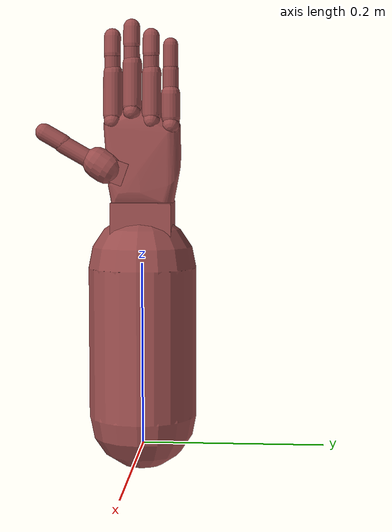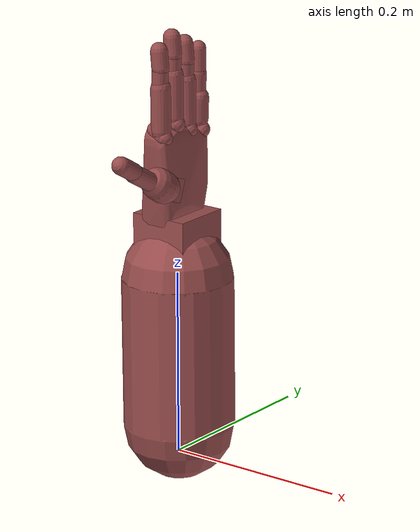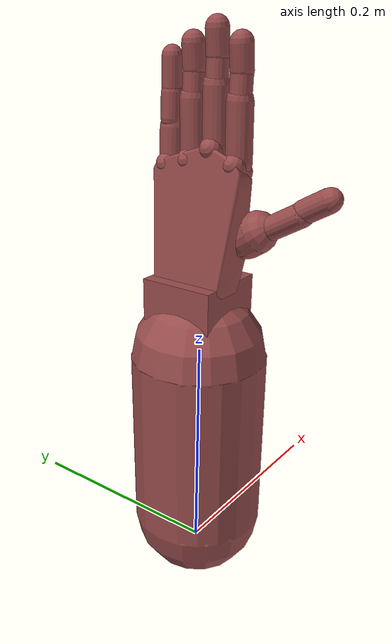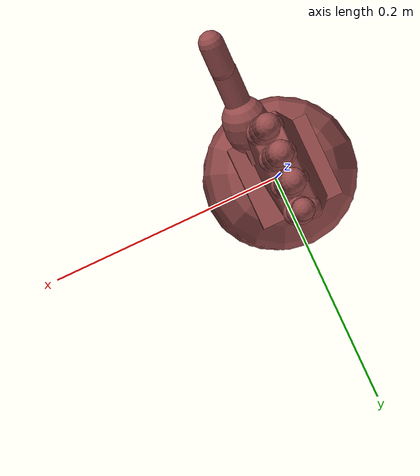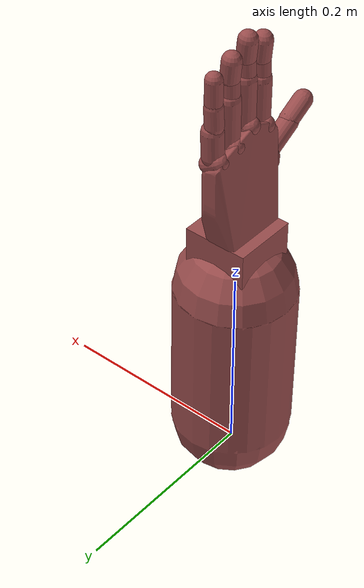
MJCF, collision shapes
<?xml version='1.0' encoding='utf-8'?>
<mujoco model="ProHand_V17">
    <compiler coordinate="local" angle="radian" meshdir="../meshes" />
    <visual>
        <scale framewidth="0.02" jointwidth="0.04" framelength="0.5" connect="0.1" />
    </visual>
    <default>
        <default class="visual">
            <geom type="mesh" contype="0" conaffinity="0" group="2" />
        </default>
        <default class="collision">
            <geom type="mesh" group="3" rgba="0.6 0.3 0.3 0.3" />
        </default>
        <default class="site/keypoint">
            <site rgba="1 0.2 0.2 0.8" size="0.002" group="0" />
        </default>
    </default>
    <asset>
        <mesh name="optimized/left_forearm1" file="optimized/left_forearm1.obj" />
        <mesh name="optimized/left_hand_wrist1_asy_prohand_v17_wrist_base_link1" file="optimized/left_hand_wrist1_asy_prohand_v17_wrist_base_link1.obj" />
        <mesh name="optimized/left_hand_wrist1_asy_prohand_v17_wrist_yaw_body1" file="optimized/left_hand_wrist1_asy_prohand_v17_wrist_yaw_body1.obj" />
        <mesh name="optimized/left_hand1_asy_prohand_v17_palm_base1" file="optimized/left_hand1_asy_prohand_v17_palm_base1.obj" />
        <mesh name="optimized/left_hand1_asy_prohand_v17_pinky1_hand_proximal_body1" file="optimized/left_hand1_asy_prohand_v17_pinky1_hand_proximal_body1.obj" />
        <mesh name="optimized/left_hand1_asy_prohand_v17_pinky1_hand_middle_body1" file="optimized/left_hand1_asy_prohand_v17_pinky1_hand_middle_body1.obj" />
        <mesh name="optimized/left_hand1_asy_prohand_v17_pinky1_hand_distal_body1" file="optimized/left_hand1_asy_prohand_v17_pinky1_hand_distal_body1.obj" />
        <mesh name="optimized/left_hand1_asy_prohand_v17_pinky1_hand_metacarpal_base_link1" file="optimized/left_hand1_asy_prohand_v17_pinky1_hand_metacarpal_base_link1.obj" />
        <mesh name="optimized/left_hand1_asy_prohand_v17_middle1_hand_finger2_proximal_body1" file="optimized/left_hand1_asy_prohand_v17_middle1_hand_finger2_proximal_body1.obj" />
        <mesh name="optimized/left_hand1_asy_prohand_v17_middle1_hand_finger2_middle_body1" file="optimized/left_hand1_asy_prohand_v17_middle1_hand_finger2_middle_body1.obj" />
        <mesh name="optimized/left_hand1_asy_prohand_v17_middle1_hand_finger2_distal_body1" file="optimized/left_hand1_asy_prohand_v17_middle1_hand_finger2_distal_body1.obj" />
        <mesh name="optimized/left_hand1_asy_prohand_v17_middle1_hand_finger2_metacarpal_base_link1" file="optimized/left_hand1_asy_prohand_v17_middle1_hand_finger2_metacarpal_base_link1.obj" />
        <mesh name="optimized/left_hand1_asy_prohand_v17_ring1_hand_finger3_proximal_body1" file="optimized/left_hand1_asy_prohand_v17_ring1_hand_finger3_proximal_body1.obj" />
        <mesh name="optimized/left_hand1_asy_prohand_v17_ring1_hand_finger3_middle_body1" file="optimized/left_hand1_asy_prohand_v17_ring1_hand_finger3_middle_body1.obj" />
        <mesh name="optimized/left_hand1_asy_prohand_v17_ring1_hand_finger3_distal_body1" file="optimized/left_hand1_asy_prohand_v17_ring1_hand_finger3_distal_body1.obj" />
        <mesh name="optimized/left_hand1_asy_prohand_v17_ring1_hand_finger3_metacarpal_base_link1" file="optimized/left_hand1_asy_prohand_v17_ring1_hand_finger3_metacarpal_base_link1.obj" />
        <mesh name="optimized/left_hand1_asy_prohand_v17_index1_hand_finger1_proximal_body1" file="optimized/left_hand1_asy_prohand_v17_index1_hand_finger1_proximal_body1.obj" />
        <mesh name="optimized/left_hand1_asy_prohand_v17_index1_hand_finger1_middle_body1" file="optimized/left_hand1_asy_prohand_v17_index1_hand_finger1_middle_body1.obj" />
        <mesh name="optimized/left_hand1_asy_prohand_v17_index1_hand_finger1_distal_body1" file="optimized/left_hand1_asy_prohand_v17_index1_hand_finger1_distal_body1.obj" />
        <mesh name="optimized/left_hand1_asy_prohand_v17_index1_hand_finger1_metacarpal_base_link1" file="optimized/left_hand1_asy_prohand_v17_index1_hand_finger1_metacarpal_base_link1.obj" />
        <mesh name="optimized/left_hand1_asy_prohand_v17_thumb1_hand_trapezium_body_base_link1" file="optimized/left_hand1_asy_prohand_v17_thumb1_hand_trapezium_body_base_link1.obj" />
        <mesh name="optimized/left_hand1_asy_prohand_v17_thumb1_hand_metacarpal_body1" file="optimized/left_hand1_asy_prohand_v17_thumb1_hand_metacarpal_body1.obj" />
        <mesh name="optimized/left_hand1_asy_prohand_v17_thumb1_hand_proximal_body1" file="optimized/left_hand1_asy_prohand_v17_thumb1_hand_proximal_body1.obj" />
        <mesh name="optimized/left_hand1_asy_prohand_v17_thumb1_hand_distal_body1" file="optimized/left_hand1_asy_prohand_v17_thumb1_hand_distal_body1.obj" />
        <mesh name="convex/left_forearm1" file="convex/left_forearm1.obj" />
        <mesh name="convex/left_hand_wrist1_asy_prohand_v17_wrist_base_link1" file="convex/left_hand_wrist1_asy_prohand_v17_wrist_base_link1.obj" />
        <mesh name="convex/left_hand_wrist1_asy_prohand_v17_wrist_yaw_body1" file="convex/left_hand_wrist1_asy_prohand_v17_wrist_yaw_body1.obj" />
        <mesh name="convex/left_hand1_asy_prohand_v17_palm_base1" file="convex/left_hand1_asy_prohand_v17_palm_base1.obj" />
        <mesh name="convex/left_hand1_asy_prohand_v17_pinky1_hand_proximal_body1" file="convex/left_hand1_asy_prohand_v17_pinky1_hand_proximal_body1.obj" />
        <mesh name="convex/left_hand1_asy_prohand_v17_pinky1_hand_middle_body1" file="convex/left_hand1_asy_prohand_v17_pinky1_hand_middle_body1.obj" />
        <mesh name="convex/left_hand1_asy_prohand_v17_pinky1_hand_distal_body1" file="convex/left_hand1_asy_prohand_v17_pinky1_hand_distal_body1.obj" />
        <mesh name="convex/left_hand1_asy_prohand_v17_pinky1_hand_metacarpal_base_link1" file="convex/left_hand1_asy_prohand_v17_pinky1_hand_metacarpal_base_link1.obj" />
        <mesh name="convex/left_hand1_asy_prohand_v17_middle1_hand_finger2_proximal_body1" file="convex/left_hand1_asy_prohand_v17_middle1_hand_finger2_proximal_body1.obj" />
        <mesh name="convex/left_hand1_asy_prohand_v17_middle1_hand_finger2_middle_body1" file="convex/left_hand1_asy_prohand_v17_middle1_hand_finger2_middle_body1.obj" />
        <mesh name="convex/left_hand1_asy_prohand_v17_middle1_hand_finger2_distal_body1" file="convex/left_hand1_asy_prohand_v17_middle1_hand_finger2_distal_body1.obj" />
        <mesh name="convex/left_hand1_asy_prohand_v17_middle1_hand_finger2_metacarpal_base_link1" file="convex/left_hand1_asy_prohand_v17_middle1_hand_finger2_metacarpal_base_link1.obj" />
        <mesh name="convex/left_hand1_asy_prohand_v17_ring1_hand_finger3_proximal_body1" file="convex/left_hand1_asy_prohand_v17_ring1_hand_finger3_proximal_body1.obj" />
        <mesh name="convex/left_hand1_asy_prohand_v17_ring1_hand_finger3_middle_body1" file="convex/left_hand1_asy_prohand_v17_ring1_hand_finger3_middle_body1.obj" />
        <mesh name="convex/left_hand1_asy_prohand_v17_ring1_hand_finger3_distal_body1" file="convex/left_hand1_asy_prohand_v17_ring1_hand_finger3_distal_body1.obj" />
        <mesh name="convex/left_hand1_asy_prohand_v17_ring1_hand_finger3_metacarpal_base_link1" file="convex/left_hand1_asy_prohand_v17_ring1_hand_finger3_metacarpal_base_link1.obj" />
        <mesh name="convex/left_hand1_asy_prohand_v17_index1_hand_finger1_proximal_body1" file="convex/left_hand1_asy_prohand_v17_index1_hand_finger1_proximal_body1.obj" />
        <mesh name="convex/left_hand1_asy_prohand_v17_index1_hand_finger1_middle_body1" file="convex/left_hand1_asy_prohand_v17_index1_hand_finger1_middle_body1.obj" />
        <mesh name="convex/left_hand1_asy_prohand_v17_index1_hand_finger1_distal_body1" file="convex/left_hand1_asy_prohand_v17_index1_hand_finger1_distal_body1.obj" />
        <mesh name="convex/left_hand1_asy_prohand_v17_index1_hand_finger1_metacarpal_base_link1" file="convex/left_hand1_asy_prohand_v17_index1_hand_finger1_metacarpal_base_link1.obj" />
        <mesh name="convex/left_hand1_asy_prohand_v17_thumb1_hand_trapezium_body_base_link1" file="convex/left_hand1_asy_prohand_v17_thumb1_hand_trapezium_body_base_link1.obj" />
        <mesh name="convex/left_hand1_asy_prohand_v17_thumb1_hand_metacarpal_body1" file="convex/left_hand1_asy_prohand_v17_thumb1_hand_metacarpal_body1.obj" />
        <mesh name="convex/left_hand1_asy_prohand_v17_thumb1_hand_proximal_body1" file="convex/left_hand1_asy_prohand_v17_thumb1_hand_proximal_body1.obj" />
        <mesh name="convex/left_hand1_asy_prohand_v17_thumb1_hand_distal_body1" file="convex/left_hand1_asy_prohand_v17_thumb1_hand_distal_body1.obj" />
    </asset>
    <worldbody>
        <body name="FOREARM1" pos="0.0000000 0.0000000 0.0000000" quat="1e+00 0e+00 0e+00 0e+00">
            <inertial mass="3.9427676" pos="-0.0043528 -0.0000449 0.1073299" diaginertia="1.526145e-02 1.522456e-02 4.313841e-03" />
            <geom name="FOREARM1/visual" class="visual" mesh="optimized/left_forearm1" />
            <geom name="FOREARM1/collision/capsule" class="collision" type="capsule" size="0.059358020920385536 0.08186706404052914" pos="0.000424 0.000002 0.113960" quat="0.999992 0.000007 -0.003923 0.000000" />
            <!--Primitive collision: CapsulePrimitive - radius=0.0594, length=0.1637-->
            <body name="wrist1/wrist_base_(base_link)1" pos="-0.0050000 0.0000000 0.2203000" quat="1e+00 0e+00 0e+00 0e+00">
                <inertial mass="0.0598453" pos="0.0000027 0.0000166 0.0074329" diaginertia="7.91751e-06 1.003025e-05 1.142026e-05" />
                <geom name="wrist1/wrist_base_(base_link)1/visual" class="visual" mesh="optimized/left_hand_wrist1_asy_prohand_v17_wrist_base_link1" />
                <geom name="wrist1/wrist_base_(base_link)1/collision/capsule" class="collision" type="capsule" size="0.02247176607966976 0.0008717383247208185" pos="-0.000197 0.000027 0.010167" quat="0.765809 0.261645 0.587434 -0.000000" />
                <!--Primitive collision: CapsulePrimitive - radius=0.0225, length=0.0017-->
                <body name="Body1" pos="0.0000000 -0.0000000 0.0200000" quat="0e+00 7.071068e-01 0e+00 7.071068e-01">
                    <inertial mass="0.0893144" pos="0.0102605 0.0000213 0.0030975" diaginertia="2.136406e-05 1.967471e-05 2.998291e-05" />
                    <geom name="Body1/visual" class="visual" mesh="optimized/left_hand_wrist1_asy_prohand_v17_wrist_yaw_body1" />
                    <geom name="Body1/collision/box" class="collision" type="box" size="0.018141 0.032555 0.032476" pos="0.009038 -0.001106 0.003796" quat="1.000000 0.000000 0.000000 0.000000" />
                    <!--Primitive collision: BoxPrimitive - dimensions=[0.0363, 0.0651, 0.0650]-->
                    <joint name="yaw" axis="0 0 1" pos="0 0 0" range="-5.235988e-01 5.235988e-01" limited="true" />
                    <body name="base1" pos="0.0180000 -0.0000000 0.0050000" quat="5e-01 5e-01 -5e-01 5e-01">
                        <inertial mass="0.2154247" pos="-0.0007858 -0.0504603 0.0009974" diaginertia="2.888739e-04 1.128874e-04 2.004196e-04" />
                        <geom name="base1/visual" class="visual" mesh="optimized/left_hand1_asy_prohand_v17_palm_base1" />
                        <geom name="base1/collision" class="collision" mesh="convex/left_hand1_asy_prohand_v17_palm_base1" />
                        <joint name="pitch" axis="0 0 1" pos="0 0 0" range="-5.235988e-01 1.047198e+00" limited="true" />
                        <body name="Finger1/metacarpal_base_(base_link)1" pos="0.0010000 -0.0980000 -0.0310000" quat="5.888e-17 7.071068e-01 6.4779e-16 7.071068e-01">
                            <inertial mass="0.0044634" pos="-0.0000002 0.0037355 -0.0003225" diaginertia="1.474219e-07 1.333687e-07 1.205535e-07" />
                            <geom name="Finger1/metacarpal_base_(base_link)1/visual" class="visual" mesh="optimized/left_hand1_asy_prohand_v17_index1_hand_finger1_metacarpal_base_link1" />
                            <geom name="Finger1/metacarpal_base_(base_link)1/collision/capsule" class="collision" type="capsule" size="0.009275237950033051 0.005976383148152113" pos="0.000000 0.001856 0.000995" quat="0.274466 -0.961597 -0.000047 0.000000" />
                            <!--Primitive collision: CapsulePrimitive - radius=0.0093, length=0.0120-->
                            <joint name="Hand1/i0_CMC_abd" axis="0 0 1" pos="0 0 0" range="-2.617994e-01 5.235988e-01" limited="true" />
                            <body name="Finger1/proximal_body1" pos="-0.0000000 0.0070000 -0.0000120" quat="0e+00 7.071068e-01 0e+00 7.071068e-01">
                                <inertial mass="0.0122797" pos="0.0026042 -0.0218771 0.0000000" diaginertia="1.907123e-06 4.327426e-07 1.788289e-06" />
                                <geom name="Finger1/proximal_body1/visual" class="visual" mesh="optimized/left_hand1_asy_prohand_v17_index1_hand_finger1_proximal_body1" />
                                <geom name="Finger1/proximal_body1/collision/capsule" class="collision" type="capsule" size="0.010431328506267396 0.02264878108237772" pos="0.002309 -0.020956 0.000216" quat="0.711329 0.702817 -0.007705 0.000000" />
                                <!--Primitive collision: CapsulePrimitive - radius=0.0104, length=0.0453-->
                                <joint name="Finger1/j1_MCP" axis="0 0 1" pos="0 0 0" range="-3.490658e-01 1.570796e+00" limited="true" />
                                <body name="Finger1/middle_body1" pos="0.0000000 -0.0420000 0.0000000" quat="1e+00 0e+00 0e+00 5.551e-17">
                                    <inertial mass="0.0050835" pos="0.0018313 -0.0112756 -0.0000000" diaginertia="3.539997e-07 1.518711e-07 3.039656e-07" />
                                    <geom name="Finger1/middle_body1/visual" class="visual" mesh="optimized/left_hand1_asy_prohand_v17_index1_hand_finger1_middle_body1" />
                                    <geom name="Finger1/middle_body1/collision/capsule" class="collision" type="capsule" size="0.008684273736263425 0.009736844043130088" pos="0.001887 -0.010038 0.000000" quat="0.707173 -0.706229 -0.033850 0.000000" />
                                    <!--Primitive collision: CapsulePrimitive - radius=0.0087, length=0.0195-->
                                    <joint name="Finger1/j2_PIP" axis="0 0 1" pos="0 0 0" range="-2.617994e-01 1.570796e+00" limited="true" />
                                    <body name="Finger1/distal_body1" pos="0.0040000 -0.0200000 0.0000000" quat="1e+00 -0e+00 0e+00 -0e+00">
                                        <inertial mass="0.0064517" pos="-0.0021032 -0.0123773 -0.0000000" diaginertia="4.615383e-07 1.770777e-07 4.245303e-07" />
                                        <geom name="Finger1/distal_body1/visual" class="visual" mesh="optimized/left_hand1_asy_prohand_v17_index1_hand_finger1_distal_body1" />
                                        <geom name="Finger1/distal_body1/collision/capsule" class="collision" type="capsule" size="0.009047332363629826 0.009146820081954514" pos="-0.002378 -0.011098 0.000008" quat="0.708229 0.703020 -0.064607 0.000000" />
                                        <!--Primitive collision: CapsulePrimitive - radius=0.0090, length=0.0183-->
                                        <joint name="Finger1/j3_DIP" axis="0 0 1" pos="0 0 0" range="0e+00 1.570796e+00" limited="true" />
                                    </body>
                                </body>
                            </body>
                        </body>
                        <body name="Finger2/metacarpal_base_(base_link)1" pos="0.0010000 -0.1080000 -0.0100000" quat="5.888e-17 7.071068e-01 6.4779e-16 7.071068e-01">
                            <inertial mass="0.0044634" pos="-0.0000002 0.0037355 -0.0003225" diaginertia="1.474219e-07 1.333687e-07 1.205535e-07" />
                            <geom name="Finger2/metacarpal_base_(base_link)1/visual" class="visual" mesh="optimized/left_hand1_asy_prohand_v17_middle1_hand_finger2_metacarpal_base_link1" />
                            <geom name="Finger2/metacarpal_base_(base_link)1/collision/capsule" class="collision" type="capsule" size="0.009275237950033051 0.005976383148152113" pos="0.000000 0.001856 0.000995" quat="0.274466 -0.961597 -0.000047 0.000000" />
                            <!--Primitive collision: CapsulePrimitive - radius=0.0093, length=0.0120-->
                            <joint name="Hand1/m0_CMC_abd" axis="0 0 1" pos="0 0 0" range="-2.617994e-01 2.617994e-01" limited="true" />
                            <body name="Finger2/proximal_body1" pos="-0.0000000 0.0070000 -0.0000120" quat="0e+00 7.071068e-01 0e+00 7.071068e-01">
                                <inertial mass="0.0122797" pos="0.0026042 -0.0218771 0.0000000" diaginertia="1.907123e-06 4.327426e-07 1.788289e-06" />
                                <geom name="Finger2/proximal_body1/visual" class="visual" mesh="optimized/left_hand1_asy_prohand_v17_middle1_hand_finger2_proximal_body1" />
                                <geom name="Finger2/proximal_body1/collision/capsule" class="collision" type="capsule" size="0.010431328506267396 0.02264878108237772" pos="0.002309 -0.020956 0.000216" quat="0.711329 0.702817 -0.007705 0.000000" />
                                <!--Primitive collision: CapsulePrimitive - radius=0.0104, length=0.0453-->
                                <joint name="Finger2/j1_MCP" axis="0 0 1" pos="0 0 0" range="-3.490658e-01 1.570796e+00" limited="true" />
                                <body name="Finger2/middle_body1" pos="0.0000000 -0.0420000 0.0000000" quat="1e+00 0e+00 0e+00 5.551e-17">
                                    <inertial mass="0.0050835" pos="0.0018313 -0.0112756 -0.0000000" diaginertia="3.539997e-07 1.518711e-07 3.039656e-07" />
                                    <geom name="Finger2/middle_body1/visual" class="visual" mesh="optimized/left_hand1_asy_prohand_v17_middle1_hand_finger2_middle_body1" />
                                    <geom name="Finger2/middle_body1/collision/capsule" class="collision" type="capsule" size="0.008684273736263425 0.009736844043130088" pos="0.001887 -0.010038 0.000000" quat="0.707173 -0.706229 -0.033850 0.000000" />
                                    <!--Primitive collision: CapsulePrimitive - radius=0.0087, length=0.0195-->
                                    <joint name="Finger2/j2_PIP" axis="0 0 1" pos="0 0 0" range="-2.617994e-01 1.570796e+00" limited="true" />
                                    <body name="Finger2/distal_body1" pos="0.0040000 -0.0200000 0.0000000" quat="1e+00 -0e+00 0e+00 -0e+00">
                                        <inertial mass="0.0064517" pos="-0.0021032 -0.0123773 -0.0000000" diaginertia="4.615383e-07 1.770777e-07 4.245303e-07" />
                                        <geom name="Finger2/distal_body1/visual" class="visual" mesh="optimized/left_hand1_asy_prohand_v17_middle1_hand_finger2_distal_body1" />
                                        <geom name="Finger2/distal_body1/collision/capsule" class="collision" type="capsule" size="0.009047332363629826 0.009146820081954514" pos="-0.002378 -0.011098 0.000008" quat="0.708229 0.703020 -0.064607 0.000000" />
                                        <!--Primitive collision: CapsulePrimitive - radius=0.0090, length=0.0183-->
                                        <joint name="Finger2/j3_DIP" axis="0 0 1" pos="0 0 0" range="0e+00 1.570796e+00" limited="true" />
                                    </body>
                                </body>
                            </body>
                        </body>
                        <body name="Pinky1/metacarpal_base_(base_link)1" pos="0.0010000 -0.0930000 0.0320000" quat="5.888e-17 7.071068e-01 6.4779e-16 7.071068e-01">
                            <inertial mass="0.0044634" pos="-0.0000002 0.0037355 -0.0003225" diaginertia="1.474219e-07 1.333687e-07 1.205535e-07" />
                            <geom name="Pinky1/metacarpal_base_(base_link)1/visual" class="visual" mesh="optimized/left_hand1_asy_prohand_v17_pinky1_hand_metacarpal_base_link1" />
                            <geom name="Pinky1/metacarpal_base_(base_link)1/collision/capsule" class="collision" type="capsule" size="0.00927753366832892 0.005968686465202594" pos="-0.000000 0.001857 0.000995" quat="0.961587 0.274499 0.000000 -0.000000" />
                            <!--Primitive collision: CapsulePrimitive - radius=0.0093, length=0.0119-->
                            <joint name="Hand1/p0_CMC_abd" axis="0 0 1" pos="0 0 0" range="-6.108652e-01 2.617994e-01" limited="true" />
                            <body name="Pinky1/proximal_body1" pos="0.0000000 0.0070000 -0.0000120" quat="0e+00 7.071068e-01 0e+00 7.071068e-01">
                                <inertial mass="0.0210231" pos="0.0030714 -0.0174744 -0.0000006" diaginertia="1.47529e-06 9.286679e-07 1.244961e-06" />
                                <geom name="Pinky1/proximal_body1/visual" class="visual" mesh="optimized/left_hand1_asy_prohand_v17_pinky1_hand_proximal_body1" />
                                <geom name="Pinky1/proximal_body1/collision/capsule" class="collision" type="capsule" size="0.010332594455389053 0.012489160115579654" pos="0.002799 -0.013472 0.000001" quat="0.707120 0.706531 0.028197 -0.000000" />
                                <!--Primitive collision: CapsulePrimitive - radius=0.0103, length=0.0250-->
                                <joint name="Pinky1/j1_MCP" axis="0 0 1" pos="0 0 0" range="-3.490658e-01 1.570796e+00" limited="true" />
                                <body name="Pinky1/middle_body1" pos="0.0000000 -0.0320000 -0.0000000" quat="1e+00 1.3796e-16 -1.1102e-16 -4e-20">
                                    <inertial mass="0.0050835" pos="0.0018313 -0.0112756 -0.0000000" diaginertia="3.539997e-07 1.518711e-07 3.039656e-07" />
                                    <geom name="Pinky1/middle_body1/visual" class="visual" mesh="optimized/left_hand1_asy_prohand_v17_pinky1_hand_middle_body1" />
                                    <geom name="Pinky1/middle_body1/collision/capsule" class="collision" type="capsule" size="0.008684273865243848 0.009736844447603869" pos="0.001887 -0.010038 0.000000" quat="0.707173 -0.706229 -0.033850 0.000000" />
                                    <!--Primitive collision: CapsulePrimitive - radius=0.0087, length=0.0195-->
                                    <joint name="Pinky1/j2_PIP" axis="0 0 1" pos="0 0 0" range="-2.617994e-01 1.570796e+00" limited="true" />
                                    <body name="Pinky1/distal_body1" pos="0.0040000 -0.0200000 -0.0000000" quat="1e+00 2.963e-17 0e+00 -1.384e-17">
                                        <inertial mass="0.0059230" pos="-0.0016616 -0.0128501 0.0000005" diaginertia="4.257244e-07 1.446234e-07 4.098516e-07" />
                                        <geom name="Pinky1/distal_body1/visual" class="visual" mesh="optimized/left_hand1_asy_prohand_v17_pinky1_hand_distal_body1" />
                                        <geom name="Pinky1/distal_body1/collision/capsule" class="collision" type="capsule" size="0.008075143427988707 0.015160004548427678" pos="-0.001545 -0.010620 0.000001" quat="0.707637 0.706557 0.005181 -0.000000" />
                                        <!--Primitive collision: CapsulePrimitive - radius=0.0081, length=0.0303-->
                                        <joint name="Pinky1/j3_DIP" axis="0 0 1" pos="0 0 0" range="0e+00 1.570796e+00" limited="true" />
                                    </body>
                                </body>
                            </body>
                        </body>
                        <body name="Finger3/metacarpal_base_(base_link)1" pos="0.0010000 -0.0980000 0.0110000" quat="5.888e-17 7.071068e-01 6.4779e-16 7.071068e-01">
                            <inertial mass="0.0044634" pos="-0.0000002 0.0037355 -0.0003225" diaginertia="1.474219e-07 1.333687e-07 1.205535e-07" />
                            <geom name="Finger3/metacarpal_base_(base_link)1/visual" class="visual" mesh="optimized/left_hand1_asy_prohand_v17_ring1_hand_finger3_metacarpal_base_link1" />
                            <geom name="Finger3/metacarpal_base_(base_link)1/collision/capsule" class="collision" type="capsule" size="0.009275237950033051 0.005976383148152113" pos="0.000000 0.001856 0.000995" quat="0.274466 -0.961597 -0.000047 0.000000" />
                            <!--Primitive collision: CapsulePrimitive - radius=0.0093, length=0.0120-->
                            <joint name="Hand1/r0_CMC_abd" axis="0 0 1" pos="0 0 0" range="-2.617994e-01 2.617994e-01" limited="true" />
                            <body name="Finger3/proximal_body1" pos="-0.0000000 0.0070000 -0.0000120" quat="0e+00 7.071068e-01 0e+00 7.071068e-01">
                                <inertial mass="0.0122797" pos="0.0026042 -0.0218771 0.0000000" diaginertia="1.907123e-06 4.327426e-07 1.788289e-06" />
                                <geom name="Finger3/proximal_body1/visual" class="visual" mesh="optimized/left_hand1_asy_prohand_v17_ring1_hand_finger3_proximal_body1" />
                                <geom name="Finger3/proximal_body1/collision/capsule" class="collision" type="capsule" size="0.010431328506267396 0.02264878108237772" pos="0.002309 -0.020956 0.000216" quat="0.711329 0.702817 -0.007705 0.000000" />
                                <!--Primitive collision: CapsulePrimitive - radius=0.0104, length=0.0453-->
                                <joint name="Finger3/j1_MCP" axis="0 0 1" pos="0 0 0" range="-3.490658e-01 1.570796e+00" limited="true" />
                                <body name="Finger3/middle_body1" pos="0.0000000 -0.0420000 0.0000000" quat="1e+00 0e+00 0e+00 5.551e-17">
                                    <inertial mass="0.0050835" pos="0.0018313 -0.0112756 -0.0000000" diaginertia="3.539997e-07 1.518711e-07 3.039656e-07" />
                                    <geom name="Finger3/middle_body1/visual" class="visual" mesh="optimized/left_hand1_asy_prohand_v17_ring1_hand_finger3_middle_body1" />
                                    <geom name="Finger3/middle_body1/collision/capsule" class="collision" type="capsule" size="0.008684273736263425 0.009736844043130088" pos="0.001887 -0.010038 0.000000" quat="0.707173 -0.706229 -0.033850 0.000000" />
                                    <!--Primitive collision: CapsulePrimitive - radius=0.0087, length=0.0195-->
                                    <joint name="Finger3/j2_PIP" axis="0 0 1" pos="0 0 0" range="-2.617994e-01 1.570796e+00" limited="true" />
                                    <body name="Finger3/distal_body1" pos="0.0040000 -0.0200000 0.0000000" quat="1e+00 -0e+00 0e+00 -0e+00">
                                        <inertial mass="0.0064517" pos="-0.0021032 -0.0123773 -0.0000000" diaginertia="4.615383e-07 1.770777e-07 4.245303e-07" />
                                        <geom name="Finger3/distal_body1/visual" class="visual" mesh="optimized/left_hand1_asy_prohand_v17_ring1_hand_finger3_distal_body1" />
                                        <geom name="Finger3/distal_body1/collision/capsule" class="collision" type="capsule" size="0.009047332363629826 0.009146820081954514" pos="-0.002378 -0.011098 0.000008" quat="0.708229 0.703020 -0.064607 0.000000" />
                                        <!--Primitive collision: CapsulePrimitive - radius=0.0090, length=0.0183-->
                                        <joint name="Finger3/j3_DIP" axis="0 0 1" pos="0 0 0" range="0e+00 1.570796e+00" limited="true" />
                                    </body>
                                </body>
                            </body>
                        </body>
                        <body name="body_(base_link)1" pos="0.0100000 -0.0395289 -0.0235680" quat="8.19152e-01 5.735764e-01 6.2623e-16 -1.82161e-15">
                            <inertial mass="0.0073437" pos="-0.0005965 -0.0030255 0.0001268" diaginertia="4.082471e-07 5.791672e-07 4.940715e-07" />
                            <geom name="body_(base_link)1/visual" class="visual" mesh="optimized/left_hand1_asy_prohand_v17_thumb1_hand_trapezium_body_base_link1" />
                            <geom name="body_(base_link)1/collision/box" class="collision" type="box" size="0.010000 0.010979 0.012500" pos="-0.000000 -0.003979 0.001500" quat="1.000000 0.000000 0.000000 0.000000" />
                            <!--Primitive collision: BoxPrimitive - dimensions=[0.0200, 0.0220, 0.0250]-->
                            <joint name="TM_abd" axis="0 0 1" pos="0 0 0" range="0e+00 2.094395e+00" limited="true" />
                            <body name="Thumb1/metacarpal_body1" pos="-0.0000000 -0.0100000 -0.0010000" quat="7.071068e-01 9.625e-17 -7.071068e-01 6.538e-17">
                                <inertial mass="0.0149694" pos="0.0030358 -0.0110728 -0.0005006" diaginertia="1.661677e-06 1.238059e-06 1.518884e-06" />
                                <geom name="Thumb1/metacarpal_body1/visual" class="visual" mesh="optimized/left_hand1_asy_prohand_v17_thumb1_hand_metacarpal_body1" />
                                <geom name="Thumb1/metacarpal_body1/collision/capsule" class="collision" type="capsule" size="0.017183081577488414 0.005345586638421002" pos="0.003682 -0.010062 -0.000908" quat="0.681567 -0.711978 -0.168981 0.000000" />
                                <!--Primitive collision: CapsulePrimitive - radius=0.0172, length=0.0107-->
                                <joint name="TM" axis="0 0 1" pos="0 0 0" range="-5.235988e-01 1.047198e+00" limited="true" />
                                <body name="Thumb1/proximal_body1" pos="0.0043412 -0.0246202 -0.0000000" quat="-8.641011e-02 1.300295e-01 1.137611e-02 9.876721e-01">
                                    <inertial mass="0.0111003" pos="0.0000960 0.0148200 -0.0000732" diaginertia="1.420007e-06 4.048893e-07 1.331462e-06" />
                                    <geom name="Thumb1/proximal_body1/visual" class="visual" mesh="optimized/left_hand1_asy_prohand_v17_thumb1_hand_proximal_body1" />
                                    <geom name="Thumb1/proximal_body1/collision/capsule" class="collision" type="capsule" size="0.009721164193367614 0.01551682190095351" pos="-0.000371 0.018203 0.000005" quat="0.707265 -0.706929 0.005207 0.000000" />
                                    <!--Primitive collision: CapsulePrimitive - radius=0.0097, length=0.0310-->
                                    <joint name="Thumb1/t2_MCP" axis="0 0 1" pos="0 0 0" range="0e+00 1.308997e+00" limited="true" />
                                    <body name="Thumb1/distal_body1" pos="0.0000000 0.0320000 0.0000000" quat="1e+00 9.9573e-16 -8.8124e-16 -1.24206e-15">
                                        <inertial mass="0.0100941" pos="-0.0006335 0.0143295 -0.0000000" diaginertia="1.108719e-06 3.245735e-07 1.083928e-06" />
                                        <geom name="Thumb1/distal_body1/visual" class="visual" mesh="optimized/left_hand1_asy_prohand_v17_thumb1_hand_distal_body1" />
                                        <geom name="Thumb1/distal_body1/collision/capsule" class="collision" type="capsule" size="0.009573708397391141 0.011600651934709239" pos="-0.001397 0.014781 -0.000000" quat="0.707051 -0.707162 0.000967 0.000000" />
                                        <!--Primitive collision: CapsulePrimitive - radius=0.0096, length=0.0232-->
                                        <joint name="Thumb1/t3_DIP" axis="0 0 1" pos="0 0 0" range="0e+00 1.570796e+00" limited="true" />
                                    </body>
                                </body>
                            </body>
                        </body>
                    </body>
                </body>
            </body>
        </body>
    </worldbody>
</mujoco>
